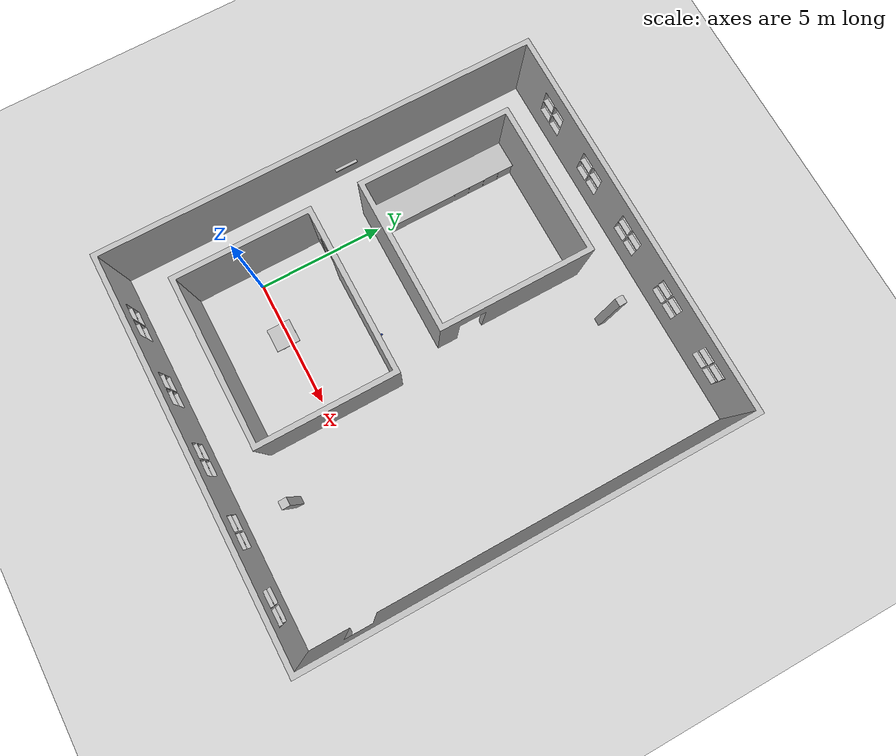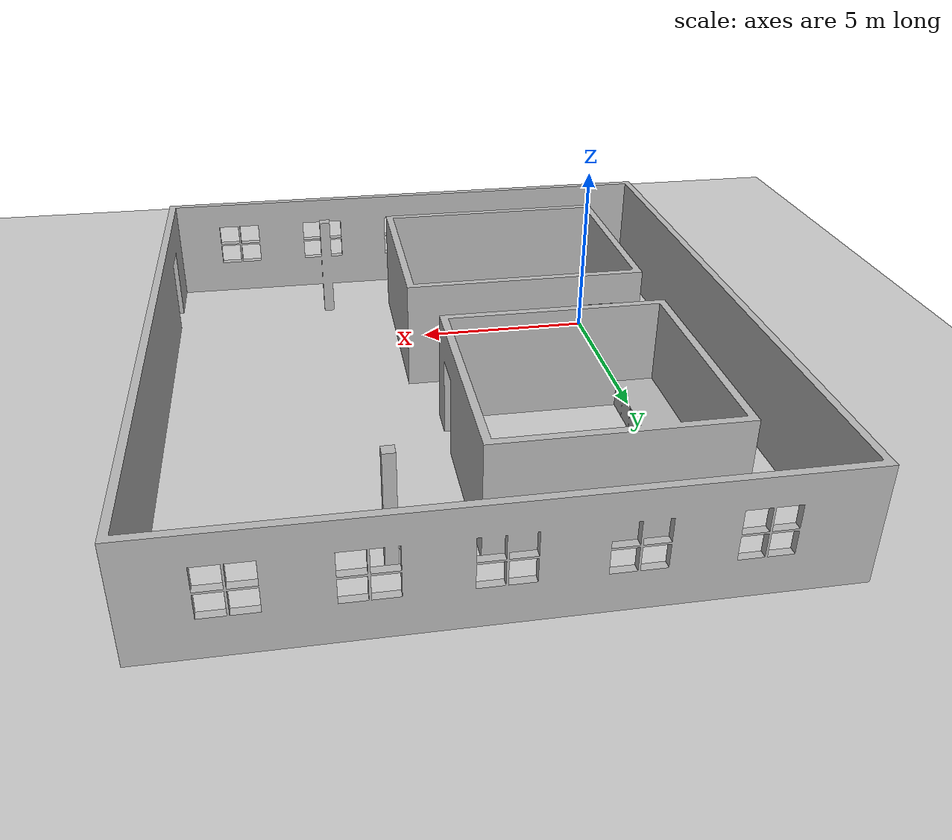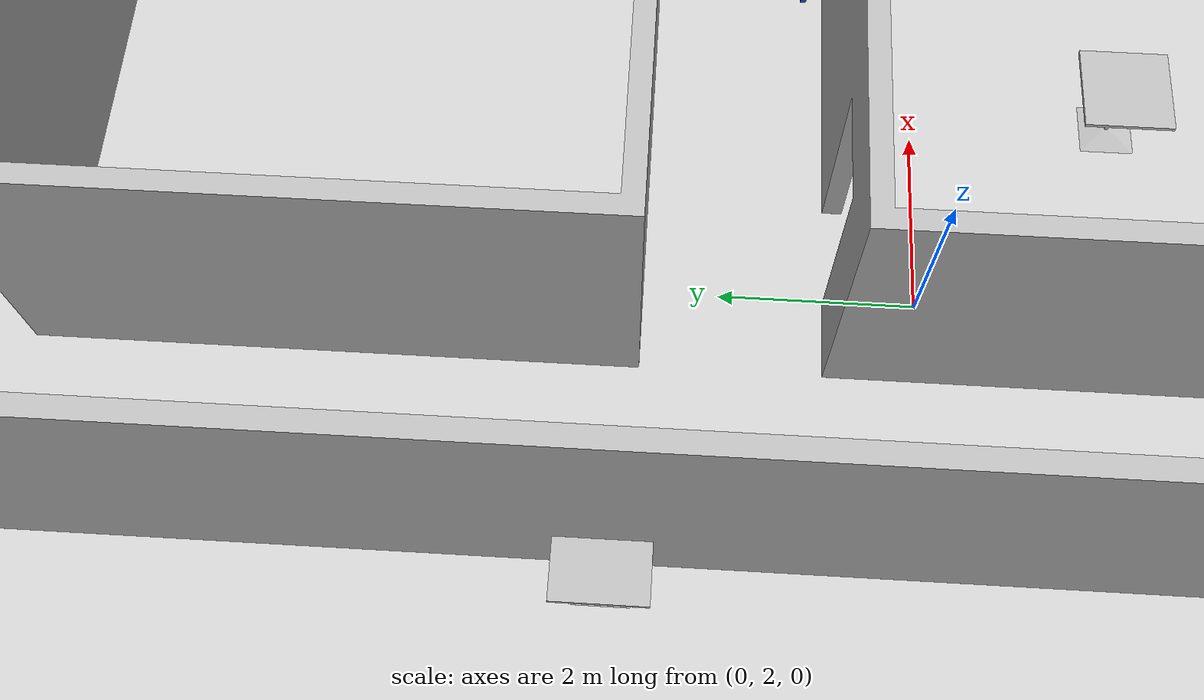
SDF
<sdf version="1.4">
 <world name="default">
  <model name="ground_plane">
   <static>1</static>
   <link name="link">
    <collision name="collision">
     <geometry><plane><normal>0 0 1</normal><size>100 100</size></plane></geometry>
     <surface><friction><ode><mu>100</mu><mu2>50</mu2></ode></friction></surface>
    </collision>
    <visual name="visual">
     <cast_shadows>0</cast_shadows>
     <geometry><plane><normal>0 0 1</normal><size>100 100</size></plane></geometry>
     <material>
      <script><uri>file://media/materials/scripts/gazebo.material</uri><name>Gazebo/Grey</name></script>
     </material>
    </visual>
    <velocity_decay><linear>0</linear><angular>0</angular></velocity_decay>
   </link>
  </model>
  <light name="sun" type="directional">
   <pose>0 0 10 0 -0 0</pose>
   <diffuse>0.8 0.8 0.8 1</diffuse>
   <specular>0.2 0.2 0.2 1</specular>
   <attenuation>
    <range>1000</range>
    <constant>0.9</constant>
    <linear>0.01</linear>
    <quadratic>0.001</quadratic>
   </attenuation>
   <direction>-0.5 0.1 -0.9</direction>
  </light>
  <model name="test_zone">
   <pose>5.46069 3.8923 0 0 -0 0</pose>
   <link name="link">
    <inertial>
     <mass>15</mass>
     <inertia><ixx>0</ixx><ixy>0</ixy><ixz>0</ixz><iyy>0</iyy><iyz>0</iyz><izz>0.1</izz></inertia>
    </inertial>
    <collision name="collision">
     <pose>-8.12 8.8 0 1.57 -0 0</pose>
     <geometry><mesh><uri>model://test_zone/meshes/building.dae</uri></mesh></geometry>
    </collision>
    <visual name="visual">
     <pose>-8.12 8.8 0 1.57 -0 0</pose>
     <geometry><mesh><uri>model://test_zone/meshes/building.dae</uri></mesh></geometry>
    </visual>
    <velocity_decay><linear>0</linear><angular>0</angular></velocity_decay>
   </link>
   <static>1</static>
  </model>
  <model name="table1">
   <static>1</static>
   <link name="link">
    <collision name="surface">
     <pose>0 0 0.755 0 -0 0</pose>
     <geometry><box><size>0.913 0.913 0.04</size></box></geometry>
    </collision>
    <collision name="column">
     <pose>0 0 0.37 0 -0 0</pose>
     <geometry><box><size>0.042 0.042 0.74</size></box></geometry>
    </collision>
    <collision name="base">
     <pose>0 0 0.02 0 -0 0</pose>
     <geometry><box><size>0.56 0.56 0.04</size></box></geometry>
    </collision>
    <visual name="visual">
     <geometry><mesh><uri>model://cafe_table/meshes/cafe_table.dae</uri></mesh></geometry>
    </visual>
    <velocity_decay><linear>0</linear><angular>0</angular></velocity_decay>
   </link>
   <pose>2.26158 -0.10938 0 0 -0 1.57</pose>
  </model>
  <model name="table2">
   <static>1</static>
   <link name="link">
    <collision name="surface">
     <pose>0 0 0.755 0 -0 0</pose>
     <geometry><box><size>0.913 0.913 0.04</size></box></geometry>
    </collision>
    <collision name="column">
     <pose>0 0 0.37 0 -0 0</pose>
     <geometry><box><size>0.042 0.042 0.74</size></box></geometry>
    </collision>
    <collision name="base">
     <pose>0 0 0.02 0 -0 0</pose>
     <geometry><box><size>0.56 0.56 0.04</size></box></geometry>
    </collision>
    <visual name="visual">
     <geometry><mesh><uri>model://cafe_table/meshes/cafe_table.dae</uri></mesh></geometry>
    </visual>
    <velocity_decay><linear>0</linear><angular>0</angular></velocity_decay>
   </link>
   <pose>-3 5 0 0 -0 1.57</pose>
  </model>
  <model name="demo_cube">
   <static>0</static>
   <link name="link">
    <inertial>
     <mass>0.25</mass>
     <inertia><ixx>0.001</ixx><ixy>0</ixy><ixz>0</ixz><iyy>0.001</iyy><iyz>0</iyz><izz>0.001</izz></inertia>
    </inertial>
    <collision name="collision">
     <geometry><box><size>0.06 0.06 0.06</size></box></geometry>
     <surface>
      <friction><ode><mu>30</mu><mu2>30</mu2></ode></friction>
      <contact><ode><kp>1e+06</kp><kd>100</kd><max_vel>1</max_vel><min_depth>0.002</min_depth></ode></contact>
     </surface>
    </collision>
    <visual name="visual">
     <geometry><box><size>0.06 0.06 0.06</size></box></geometry>
     <material>
      <script><uri>file://media/materials/scripts/gazebo.material</uri><name>Gazebo/Blue</name></script>
     </material>
    </visual>
    <velocity_decay><linear>0</linear><angular>0</angular></velocity_decay>
   </link>
   <pose>3.8 3.15 0.027999 0 -0 0</pose>
  </model>
  <physics type="ode">
   <max_step_size>0.001</max_step_size>
   <real_time_factor>1</real_time_factor>
   <real_time_update_rate>1000</real_time_update_rate>
   <gravity>0 0 -9.8</gravity>
  </physics>
  <scene><ambient>0.4 0.4 0.4 1</ambient><background>0.7 0.7 0.7 1</background><shadows>1</shadows></scene>
  <spherical_coordinates>
   <surface_model>EARTH_WGS84</surface_model>
   <latitude_deg>0</latitude_deg>
   <longitude_deg>0</longitude_deg>
   <elevation>0</elevation>
   <heading_deg>0</heading_deg>
  </spherical_coordinates>
 </world>
</sdf>
